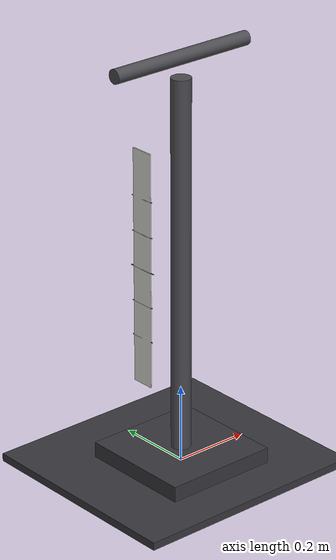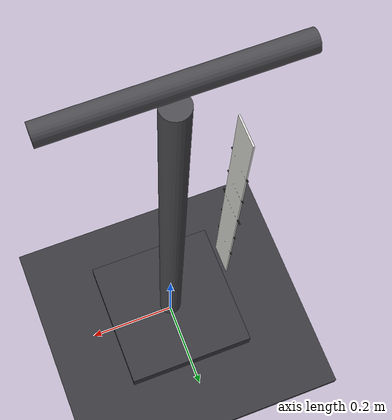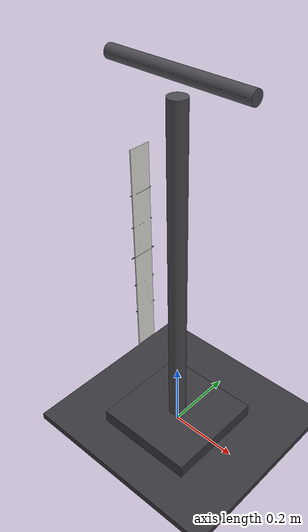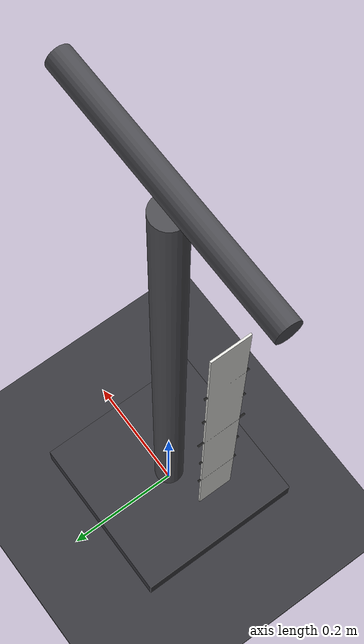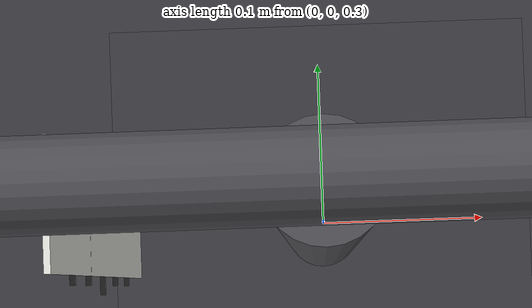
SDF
<?xml version="1.0"?>
<sdf version="1.6">
<world name="damper_lab">

  <!-- ── Physics ─────────────────────────────────────────── -->
  <physics type="ode">
    <real_time_update_rate>1000</real_time_update_rate>
    <max_step_size>0.001</max_step_size>
    <gravity>0 0 -9.81</gravity>
    <ode>
      <solver>
        <type>quick</type>
        <iters>150</iters>
        <sor>1.4</sor>
      </solver>
    </ode>
  </physics>

  <!-- ── Ambient scene ───────────────────────────────────── -->
  <scene>
    <ambient>0.3 0.3 0.35 1</ambient>
    <background>0.08 0.08 0.12 1</background>
    <shadows>true</shadows>
    <grid>false</grid>
  </scene>

  <!-- ── Key light (front-left, warm white) ─────────────── -->
  <light name="key_light" type="directional">
    <cast_shadows>true</cast_shadows>
    <pose>-2 -2 4 0 0 0</pose>
    <diffuse>0.95 0.92 0.88 1</diffuse>
    <specular>0.6 0.6 0.6 1</specular>
    <direction>0.4 0.3 -0.8</direction>
  </light>

  <!-- ── Fill light (right, cool) ────────────────────────── -->
  <light name="fill_light" type="directional">
    <cast_shadows>false</cast_shadows>
    <pose>3 1 3 0 0 0</pose>
    <diffuse>0.30 0.35 0.45 1</diffuse>
    <specular>0.1 0.1 0.1 1</specular>
    <direction>-0.5 -0.2 -0.6</direction>
  </light>

  <!-- ── Rim light (back, highlight edges) ───────────────── -->
  <light name="rim_light" type="directional">
    <cast_shadows>false</cast_shadows>
    <pose>0 3 2 0 0 0</pose>
    <diffuse>0.15 0.18 0.25 1</diffuse>
    <specular>0.05 0.05 0.05 1</specular>
    <direction>0 -0.7 -0.5</direction>
  </light>

  <!-- ── Lab floor (dark concrete tile) ─────────────────── -->
  <model name="lab_floor">
    <static>true</static>
    <pose>0 0 -0.01 0 0 0</pose>
    <link name="link">
      <collision name="col">
        <geometry><box><size>6 6 0.02</size></box></geometry>
      </collision>
      <visual name="vis">
        <geometry><box><size>6 6 0.02</size></box></geometry>
        <material>
          <ambient>0.18 0.18 0.20 1</ambient>
          <diffuse>0.22 0.22 0.24 1</diffuse>
          <specular>0.05 0.05 0.05 1</specular>
        </material>
      </visual>
    </link>
  </model>

  <!-- ── Test rig stand (the damper hangs from this) ─────── -->
  <!-- Vertical post -->
  <model name="rig_post">
    <static>true</static>
    <pose>0 0 0.5 0 0 0</pose>
    <link name="link">
      <collision name="col">
        <geometry><cylinder><radius>0.025</radius><length>1.0</length></cylinder></geometry>
      </collision>
      <visual name="vis">
        <geometry><cylinder><radius>0.025</radius><length>1.0</length></cylinder></geometry>
        <material>
          <ambient>0.20 0.20 0.22 1</ambient>
          <diffuse>0.30 0.30 0.32 1</diffuse>
          <specular>0.4 0.4 0.4 1</specular>
        </material>
      </visual>
    </link>
  </model>

  <!-- Horizontal crossbar -->
  <model name="rig_crossbar">
    <static>true</static>
    <pose>0 0 1.05 0 1.5708 0</pose>
    <link name="link">
      <collision name="col">
        <geometry><cylinder><radius>0.018</radius><length>0.40</length></cylinder></geometry>
      </collision>
      <visual name="vis">
        <geometry><cylinder><radius>0.018</radius><length>0.40</length></cylinder></geometry>
        <material>
          <ambient>0.20 0.20 0.22 1</ambient>
          <diffuse>0.30 0.30 0.32 1</diffuse>
          <specular>0.4 0.4 0.4 1</specular>
        </material>
      </visual>
    </link>
  </model>

  <!-- Base plate -->
  <model name="base_plate">
    <static>true</static>
    <pose>0 0 0.02 0 0 0</pose>
    <link name="link">
      <collision name="col">
        <geometry><box><size>0.30 0.30 0.04</size></box></geometry>
      </collision>
      <visual name="vis">
        <geometry><box><size>0.30 0.30 0.04</size></box></geometry>
        <material>
          <ambient>0.15 0.15 0.17 1</ambient>
          <diffuse>0.22 0.22 0.24 1</diffuse>
          <specular>0.5 0.5 0.5 1</specular>
        </material>
      </visual>
    </link>
  </model>

  <!-- Measurement scale markings (thin box behind damper) -->
  <model name="scale_plate">
    <static>true</static>
    <pose>-0.12 0 0.55 0 0 0</pose>
    <link name="link">
      <visual name="vis">
        <geometry><box><size>0.003 0.06 0.60</size></box></geometry>
        <material>
          <ambient>0.85 0.85 0.82 1</ambient>
          <diffuse>0.90 0.90 0.88 1</diffuse>
        </material>
      </visual>
    </link>
  </model>

  <!-- Tick marks on scale (5 horizontal lines) -->
  <model name="tick_0"><static>true</static><pose>-0.120 0 0.55 0 0 0</pose>
    <link name="l"><visual name="v"><geometry><box><size>0.003 0.08 0.001</size></box></geometry>
    <material><ambient>0.1 0.1 0.1 1</ambient></material></visual></link></model>

  <model name="tick_1"><static>true</static><pose>-0.120 0 0.64 0 0 0</pose>
    <link name="l"><visual name="v"><geometry><box><size>0.003 0.07 0.001</size></box></geometry>
    <material><ambient>0.1 0.1 0.1 1</ambient></material></visual></link></model>

  <model name="tick_2"><static>true</static><pose>-0.120 0 0.73 0 0 0</pose>
    <link name="l"><visual name="v"><geometry><box><size>0.003 0.07 0.001</size></box></geometry>
    <material><ambient>0.1 0.1 0.1 1</ambient></material></visual></link></model>

  <model name="tick_3"><static>true</static><pose>-0.120 0 0.46 0 0 0</pose>
    <link name="l"><visual name="v"><geometry><box><size>0.003 0.07 0.001</size></box></geometry>
    <material><ambient>0.1 0.1 0.1 1</ambient></material></visual></link></model>

  <model name="tick_4"><static>true</static><pose>-0.120 0 0.37 0 0 0</pose>
    <link name="l"><visual name="v"><geometry><box><size>0.003 0.07 0.001</size></box></geometry>
    <material><ambient>0.1 0.1 0.1 1</ambient></material></visual></link></model>

</world>
</sdf>
